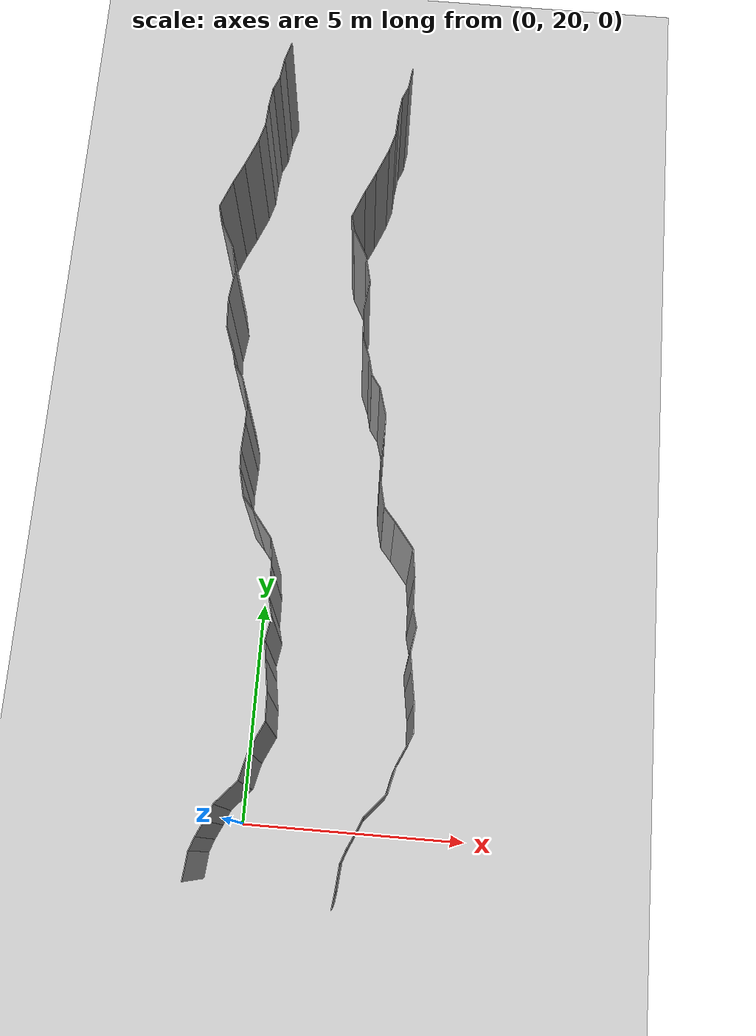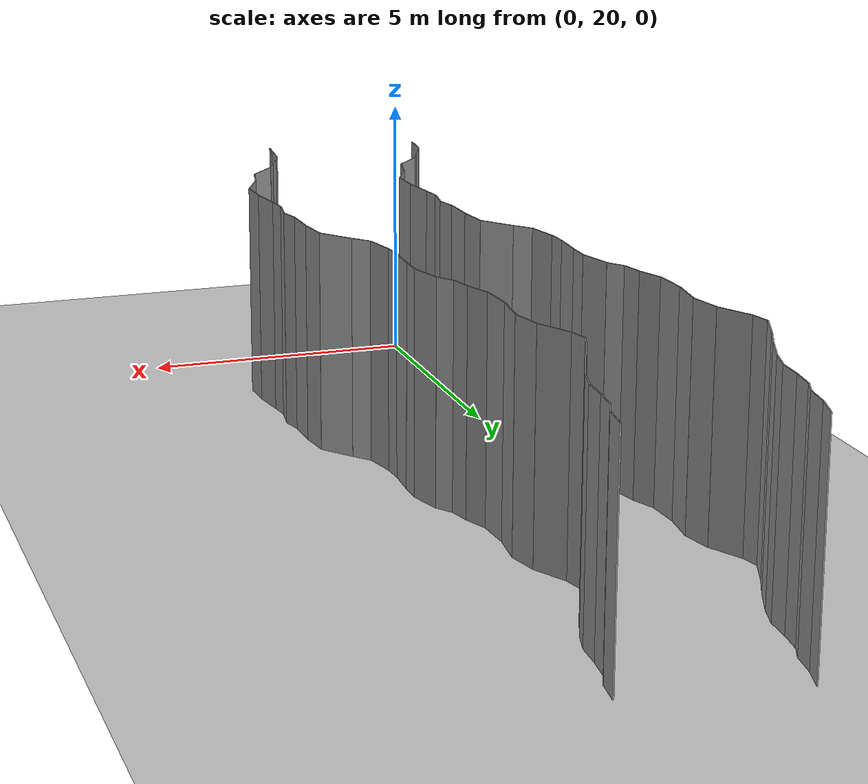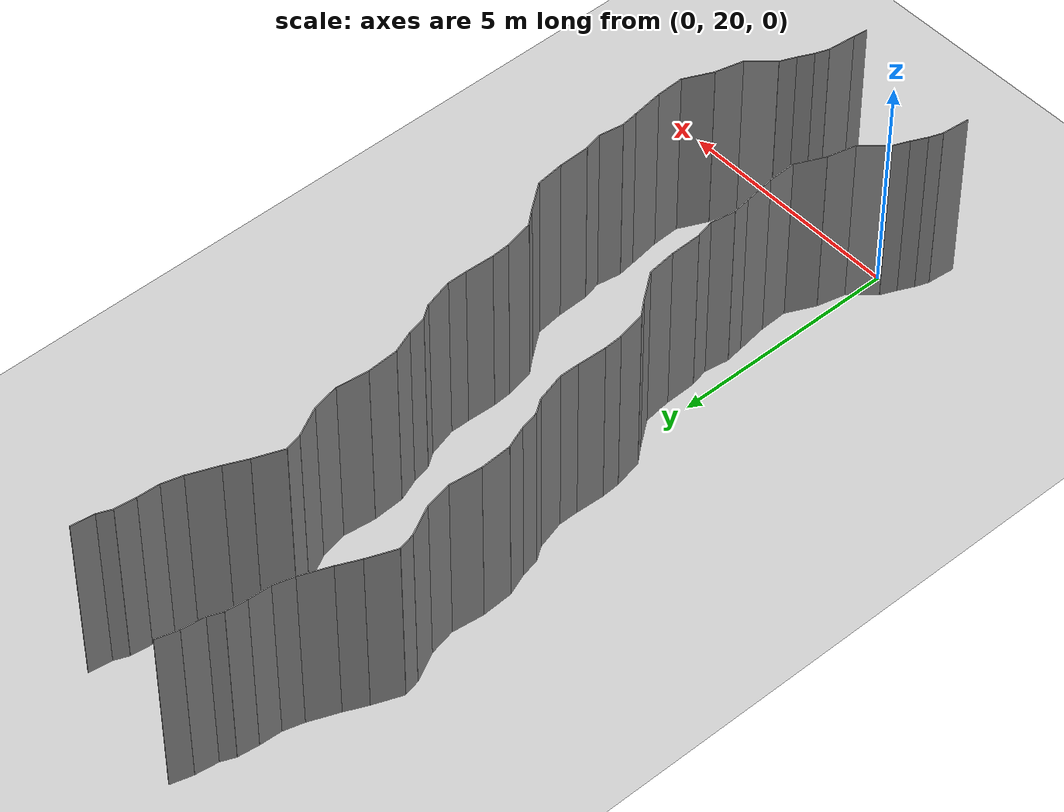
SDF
<sdf version="1.6">
 <world name="default">
  <model name="ground_plane">
   <static>1</static>
   <link name="link">
    <collision name="collision">
     <geometry><plane><normal>0 0 1</normal><size>200 200</size></plane></geometry>
     <surface><friction><ode><mu>100</mu><mu2>50</mu2></ode></friction></surface>
    </collision>
    <visual name="visual">
     <cast_shadows>0</cast_shadows>
     <geometry><plane><normal>0 0 1</normal><size>200 200</size></plane></geometry>
     <material>
      <script><uri>file://media/materials/scripts/gazebo.material</uri><name>Gazebo/Grey</name></script>
     </material>
    </visual>
   </link>
   <pose>0 100 0 0 -0 0</pose>
  </model>
  <model name="wall_73">
   <static>1</static>
   <pose>2.219020097511163 18.608365236209874 2 0 0 -0.12762203050015697</pose>
   <link name="link">
    <collision name="collision"><geometry><box><size>0.02 0.304195233267 4</size></box></geometry></collision>
    <visual name="visual">
     <material>
      <script><name>Gazebo/Grey</name><uri>file://media/materials/scripts/gazebo.material</uri></script>
     </material>
     <geometry><box><size>0.02 0.304195233267 4</size></box></geometry>
    </visual>
   </link>
  </model>
  <model name="wall_74">
   <static>1</static>
   <pose>-0.7339553938217581 19.053002999837826 2 0 0 -0.09389702541080118</pose>
   <link name="link">
    <collision name="collision"><geometry><box><size>0.02 0.590153885195 4</size></box></geometry></collision>
    <visual name="visual">
     <material>
      <script><name>Gazebo/Grey</name><uri>file://media/materials/scripts/gazebo.material</uri></script>
     </material>
     <geometry><box><size>0.02 0.590153885195 4</size></box></geometry>
    </visual>
   </link>
  </model>
  <model name="wall_75">
   <static>1</static>
   <pose>2.2660446061782418 19.053002999837826 2 0 0 -0.09389702541080118</pose>
   <link name="link">
    <collision name="collision"><geometry><box><size>0.02 0.590153885195 4</size></box></geometry></collision>
    <visual name="visual">
     <material>
      <script><name>Gazebo/Grey</name><uri>file://media/materials/scripts/gazebo.material</uri></script>
     </material>
     <geometry><box><size>0.02 0.590153885195 4</size></box></geometry>
    </visual>
   </link>
  </model>
  <model name="wall_76">
   <static>1</static>
   <pose>-0.6542394221214239 19.487677579665444 2 0 0 -0.3538663800210382</pose>
   <link name="link">
    <collision name="collision"><geometry><box><size>0.02 0.300408274332 4</size></box></geometry></collision>
    <visual name="visual">
     <material>
      <script><name>Gazebo/Grey</name><uri>file://media/materials/scripts/gazebo.material</uri></script>
     </material>
     <geometry><box><size>0.02 0.300408274332 4</size></box></geometry>
    </visual>
   </link>
  </model>
  <model name="wall_77">
   <static>1</static>
   <pose>2.345760577878576 19.487677579665444 2 0 0 -0.3538663800210382</pose>
   <link name="link">
    <collision name="collision"><geometry><box><size>0.02 0.300408274332 4</size></box></geometry></collision>
    <visual name="visual">
     <material>
      <script><name>Gazebo/Grey</name><uri>file://media/materials/scripts/gazebo.material</uri></script>
     </material>
     <geometry><box><size>0.02 0.300408274332 4</size></box></geometry>
    </visual>
   </link>
  </model>
  <model name="wall_78">
   <static>1</static>
   <pose>-0.5257628058018844 19.78918479655036 2 0 0 -0.44414493881926276</pose>
   <link name="link">
    <collision name="collision"><geometry><box><size>0.02 0.355733291643 4</size></box></geometry></collision>
    <visual name="visual">
     <material>
      <script><name>Gazebo/Grey</name><uri>file://media/materials/scripts/gazebo.material</uri></script>
     </material>
     <geometry><box><size>0.02 0.355733291643 4</size></box></geometry>
    </visual>
   </link>
  </model>
  <model name="wall_79">
   <static>1</static>
   <pose>2.474237194198116 19.78918479655036 2 0 0 -0.44414493881926276</pose>
   <link name="link">
    <collision name="collision"><geometry><box><size>0.02 0.355733291643 4</size></box></geometry></collision>
    <visual name="visual">
     <material>
      <script><name>Gazebo/Grey</name><uri>file://media/materials/scripts/gazebo.material</uri></script>
     </material>
     <geometry><box><size>0.02 0.355733291643 4</size></box></geometry>
    </visual>
   </link>
  </model>
  <model name="wall_80">
   <static>1</static>
   <pose>-0.37928064484786284 20.115130289323773 2 0 0 -0.400782385011734</pose>
   <link name="link">
    <collision name="collision"><geometry><box><size>0.02 0.359130423892 4</size></box></geometry></collision>
    <visual name="visual">
     <material>
      <script><name>Gazebo/Grey</name><uri>file://media/materials/scripts/gazebo.material</uri></script>
     </material>
     <geometry><box><size>0.02 0.359130423892 4</size></box></geometry>
    </visual>
   </link>
  </model>
  <model name="wall_81">
   <static>1</static>
   <pose>2.6207193551521373 20.115130289323773 2 0 0 -0.400782385011734</pose>
   <link name="link">
    <collision name="collision"><geometry><box><size>0.02 0.359130423892 4</size></box></geometry></collision>
    <visual name="visual">
     <material>
      <script><name>Gazebo/Grey</name><uri>file://media/materials/scripts/gazebo.material</uri></script>
     </material>
     <geometry><box><size>0.02 0.359130423892 4</size></box></geometry>
    </visual>
   </link>
  </model>
  <model name="wall_82">
   <static>1</static>
   <pose>-0.08817520466029033 20.526300657599137 2 0 0 -0.7323630163622958</pose>
   <link name="link">
    <collision name="collision"><geometry><box><size>0.02 0.661204337302 4</size></box></geometry></collision>
    <visual name="visual">
     <material>
      <script><name>Gazebo/Grey</name><uri>file://media/materials/scripts/gazebo.material</uri></script>
     </material>
     <geometry><box><size>0.02 0.661204337302 4</size></box></geometry>
    </visual>
   </link>
  </model>
  <model name="wall_83">
   <static>1</static>
   <pose>2.91182479533971 20.526300657599137 2 0 0 -0.7323630163622958</pose>
   <link name="link">
    <collision name="collision"><geometry><box><size>0.02 0.661204337302 4</size></box></geometry></collision>
    <visual name="visual">
     <material>
      <script><name>Gazebo/Grey</name><uri>file://media/materials/scripts/gazebo.material</uri></script>
     </material>
     <geometry><box><size>0.02 0.661204337302 4</size></box></geometry>
    </visual>
   </link>
  </model>
  <model name="wall_84">
   <static>1</static>
   <pose>0.2058278364939707 21.071242176593536 2 0 0 -0.23923179702753614</pose>
   <link name="link">
    <collision name="collision"><geometry><box><size>0.02 0.615750192971 4</size></box></geometry></collision>
    <visual name="visual">
     <material>
      <script><name>Gazebo/Grey</name><uri>file://media/materials/scripts/gazebo.material</uri></script>
     </material>
     <geometry><box><size>0.02 0.615750192971 4</size></box></geometry>
    </visual>
   </link>
  </model>
  <model name="wall_85">
   <static>1</static>
   <pose>3.2058278364939707 21.071242176593536 2 0 0 -0.23923179702753614</pose>
   <link name="link">
    <collision name="collision"><geometry><box><size>0.02 0.615750192971 4</size></box></geometry></collision>
    <visual name="visual">
     <material>
      <script><name>Gazebo/Grey</name><uri>file://media/materials/scripts/gazebo.material</uri></script>
     </material>
     <geometry><box><size>0.02 0.615750192971 4</size></box></geometry>
    </visual>
   </link>
  </model>
  <model name="wall_86">
   <static>1</static>
   <pose>0.4191884155627339 21.671542502938113 2 0 0 -0.43621998670861933</pose>
   <link name="link">
    <collision name="collision"><geometry><box><size>0.02 0.664625535877 4</size></box></geometry></collision>
    <visual name="visual">
     <material>
      <script><name>Gazebo/Grey</name><uri>file://media/materials/scripts/gazebo.material</uri></script>
     </material>
     <geometry><box><size>0.02 0.664625535877 4</size></box></geometry>
    </visual>
   </link>
  </model>
  <model name="wall_87">
   <static>1</static>
   <pose>3.4191884155627337 21.671542502938113 2 0 0 -0.43621998670861933</pose>
   <link name="link">
    <collision name="collision"><geometry><box><size>0.02 0.664625535877 4</size></box></geometry></collision>
    <visual name="visual">
     <material>
      <script><name>Gazebo/Grey</name><uri>file://media/materials/scripts/gazebo.material</uri></script>
     </material>
     <geometry><box><size>0.02 0.664625535877 4</size></box></geometry>
    </visual>
   </link>
  </model>
  <model name="wall_88">
   <static>1</static>
   <pose>0.5473518022686106 22.27189220624613 2 0 0 0.040906365883198195</pose>
   <link name="link">
    <collision name="collision"><geometry><box><size>0.02 0.598813497922 4</size></box></geometry></collision>
    <visual name="visual">
     <material>
      <script><name>Gazebo/Grey</name><uri>file://media/materials/scripts/gazebo.material</uri></script>
     </material>
     <geometry><box><size>0.02 0.598813497922 4</size></box></geometry>
    </visual>
   </link>
  </model>
  <model name="wall_89">
   <static>1</static>
   <pose>3.5473518022686106 22.27189220624613 2 0 0 0.040906365883198195</pose>
   <link name="link">
    <collision name="collision"><geometry><box><size>0.02 0.598813497922 4</size></box></geometry></collision>
    <visual name="visual">
     <material>
      <script><name>Gazebo/Grey</name><uri>file://media/materials/scripts/gazebo.material</uri></script>
     </material>
     <geometry><box><size>0.02 0.598813497922 4</size></box></geometry>
    </visual>
   </link>
  </model>
  <model name="wall_90">
   <static>1</static>
   <pose>0.48670586295287777 22.9039956453875 2 0 0 0.144362267005257</pose>
   <link name="link">
    <collision name="collision"><geometry><box><size>0.02 0.672893858371 4</size></box></geometry></collision>
    <visual name="visual">
     <material>
      <script><name>Gazebo/Grey</name><uri>file://media/materials/scripts/gazebo.material</uri></script>
     </material>
     <geometry><box><size>0.02 0.672893858371 4</size></box></geometry>
    </visual>
   </link>
  </model>
  <model name="wall_91">
   <static>1</static>
   <pose>3.4867058629528778 22.9039956453875 2 0 0 0.144362267005257</pose>
   <link name="link">
    <collision name="collision"><geometry><box><size>0.02 0.672893858371 4</size></box></geometry></collision>
    <visual name="visual">
     <material>
      <script><name>Gazebo/Grey</name><uri>file://media/materials/scripts/gazebo.material</uri></script>
     </material>
     <geometry><box><size>0.02 0.672893858371 4</size></box></geometry>
    </visual>
   </link>
  </model>
  <model name="wall_92">
   <static>1</static>
   <pose>0.41352244779082803 23.41855405179302 2 0 0 0.13561708210728887</pose>
   <link name="link">
    <collision name="collision"><geometry><box><size>0.02 0.366588478465 4</size></box></geometry></collision>
    <visual name="visual">
     <material>
      <script><name>Gazebo/Grey</name><uri>file://media/materials/scripts/gazebo.material</uri></script>
     </material>
     <geometry><box><size>0.02 0.366588478465 4</size></box></geometry>
    </visual>
   </link>
  </model>
  <model name="wall_93">
   <static>1</static>
   <pose>3.413522447790828 23.41855405179302 2 0 0 0.13561708210728887</pose>
   <link name="link">
    <collision name="collision"><geometry><box><size>0.02 0.366588478465 4</size></box></geometry></collision>
    <visual name="visual">
     <material>
      <script><name>Gazebo/Grey</name><uri>file://media/materials/scripts/gazebo.material</uri></script>
     </material>
     <geometry><box><size>0.02 0.366588478465 4</size></box></geometry>
    </visual>
   </link>
  </model>
  <model name="wall_94">
   <static>1</static>
   <pose>0.4307897962655922 23.860100413446663 2 0 0 -0.1603781570417159</pose>
   <link name="link">
    <collision name="collision"><geometry><box><size>0.02 0.52662846884 4</size></box></geometry></collision>
    <visual name="visual">
     <material>
      <script><name>Gazebo/Grey</name><uri>file://media/materials/scripts/gazebo.material</uri></script>
     </material>
     <geometry><box><size>0.02 0.52662846884 4</size></box></geometry>
    </visual>
   </link>
  </model>
  <model name="wall_95">
   <static>1</static>
   <pose>3.430789796265592 23.860100413446663 2 0 0 -0.1603781570417159</pose>
   <link name="link">
    <collision name="collision"><geometry><box><size>0.02 0.52662846884 4</size></box></geometry></collision>
    <visual name="visual">
     <material>
      <script><name>Gazebo/Grey</name><uri>file://media/materials/scripts/gazebo.material</uri></script>
     </material>
     <geometry><box><size>0.02 0.52662846884 4</size></box></geometry>
    </visual>
   </link>
  </model>
  <model name="wall_96">
   <static>1</static>
   <pose>0.4265885104292357 24.314183559669832 2 0 0 0.2338631590387517</pose>
   <link name="link">
    <collision name="collision"><geometry><box><size>0.02 0.399161882734 4</size></box></geometry></collision>
    <visual name="visual">
     <material>
      <script><name>Gazebo/Grey</name><uri>file://media/materials/scripts/gazebo.material</uri></script>
     </material>
     <geometry><box><size>0.02 0.399161882734 4</size></box></geometry>
    </visual>
   </link>
  </model>
  <model name="wall_97">
   <static>1</static>
   <pose>3.4265885104292355 24.314183559669832 2 0 0 0.2338631590387517</pose>
   <link name="link">
    <collision name="collision"><geometry><box><size>0.02 0.399161882734 4</size></box></geometry></collision>
    <visual name="visual">
     <material>
      <script><name>Gazebo/Grey</name><uri>file://media/materials/scripts/gazebo.material</uri></script>
     </material>
     <geometry><box><size>0.02 0.399161882734 4</size></box></geometry>
    </visual>
   </link>
  </model>
  <model name="wall_98">
   <static>1</static>
   <pose>0.37208450304329926 24.84162740775595 2 0 0 0.024758738950173824</pose>
   <link name="link">
    <collision name="collision"><geometry><box><size>0.02 0.666795992167 4</size></box></geometry></collision>
    <visual name="visual">
     <material>
      <script><name>Gazebo/Grey</name><uri>file://media/materials/scripts/gazebo.material</uri></script>
     </material>
     <geometry><box><size>0.02 0.666795992167 4</size></box></geometry>
    </visual>
   </link>
  </model>
  <model name="wall_99">
   <static>1</static>
   <pose>3.372084503043299 24.84162740775595 2 0 0 0.024758738950173824</pose>
   <link name="link">
    <collision name="collision"><geometry><box><size>0.02 0.666795992167 4</size></box></geometry></collision>
    <visual name="visual">
     <material>
      <script><name>Gazebo/Grey</name><uri>file://media/materials/scripts/gazebo.material</uri></script>
     </material>
     <geometry><box><size>0.02 0.666795992167 4</size></box></geometry>
    </visual>
   </link>
  </model>
  <model name="wall_100">
   <static>1</static>
   <pose>0.32668797906791375 25.4742277673065 2 0 0 0.12346597693562823</pose>
   <link name="link">
    <collision name="collision"><geometry><box><size>0.02 0.603200800953 4</size></box></geometry></collision>
    <visual name="visual">
     <material>
      <script><name>Gazebo/Grey</name><uri>file://media/materials/scripts/gazebo.material</uri></script>
     </material>
     <geometry><box><size>0.02 0.603200800953 4</size></box></geometry>
    </visual>
   </link>
  </model>
  <model name="wall_101">
   <static>1</static>
   <pose>3.3266879790679136 25.4742277673065 2 0 0 0.12346597693562823</pose>
   <link name="link">
    <collision name="collision"><geometry><box><size>0.02 0.603200800953 4</size></box></geometry></collision>
    <visual name="visual">
     <material>
      <script><name>Gazebo/Grey</name><uri>file://media/materials/scripts/gazebo.material</uri></script>
     </material>
     <geometry><box><size>0.02 0.603200800953 4</size></box></geometry>
    </visual>
   </link>
  </model>
  <model name="wall_102">
   <static>1</static>
   <pose>0.07929529165458027 26.04839696648243 2 0 0 0.6529825571611448</pose>
   <link name="link">
    <collision name="collision"><geometry><box><size>0.02 0.692114358872 4</size></box></geometry></collision>
    <visual name="visual">
     <material>
      <script><name>Gazebo/Grey</name><uri>file://media/materials/scripts/gazebo.material</uri></script>
     </material>
     <geometry><box><size>0.02 0.692114358872 4</size></box></geometry>
    </visual>
   </link>
  </model>
  <model name="wall_103">
   <static>1</static>
   <pose>3.07929529165458 26.04839696648243 2 0 0 0.6529825571611448</pose>
   <link name="link">
    <collision name="collision"><geometry><box><size>0.02 0.692114358872 4</size></box></geometry></collision>
    <visual name="visual">
     <material>
      <script><name>Gazebo/Grey</name><uri>file://media/materials/scripts/gazebo.material</uri></script>
     </material>
     <geometry><box><size>0.02 0.692114358872 4</size></box></geometry>
    </visual>
   </link>
  </model>
  <model name="wall_104">
   <static>1</static>
   <pose>-0.25588651996772654 26.4709274393617 2 0 0 0.7021936978117561</pose>
   <link name="link">
    <collision name="collision"><geometry><box><size>0.02 0.386849803966 4</size></box></geometry></collision>
    <visual name="visual">
     <material>
      <script><name>Gazebo/Grey</name><uri>file://media/materials/scripts/gazebo.material</uri></script>
     </material>
     <geometry><box><size>0.02 0.386849803966 4</size></box></geometry>
    </visual>
   </link>
  </model>
  <model name="wall_105">
   <static>1</static>
   <pose>2.7441134800322735 26.4709274393617 2 0 0 0.7021936978117561</pose>
   <link name="link">
    <collision name="collision"><geometry><box><size>0.02 0.386849803966 4</size></box></geometry></collision>
    <visual name="visual">
     <material>
      <script><name>Gazebo/Grey</name><uri>file://media/materials/scripts/gazebo.material</uri></script>
     </material>
     <geometry><box><size>0.02 0.386849803966 4</size></box></geometry>
    </visual>
   </link>
  </model>
  <model name="wall_106">
   <static>1</static>
   <pose>-0.4460654364318296 26.92396046149528 2 0 0 0.210501846261413</pose>
   <link name="link">
    <collision name="collision"><geometry><box><size>0.02 0.624519952048 4</size></box></geometry></collision>
    <visual name="visual">
     <material>
      <script><name>Gazebo/Grey</name><uri>file://media/materials/scripts/gazebo.material</uri></script>
     </material>
     <geometry><box><size>0.02 0.624519952048 4</size></box></geometry>
    </visual>
   </link>
  </model>
  <model name="wall_107">
   <static>1</static>
   <pose>2.5539345635681703 26.92396046149528 2 0 0 0.210501846261413</pose>
   <link name="link">
    <collision name="collision"><geometry><box><size>0.02 0.624519952048 4</size></box></geometry></collision>
    <visual name="visual">
     <material>
      <script><name>Gazebo/Grey</name><uri>file://media/materials/scripts/gazebo.material</uri></script>
     </material>
     <geometry><box><size>0.02 0.624519952048 4</size></box></geometry>
    </visual>
   </link>
  </model>
  <model name="wall_108">
   <static>1</static>
   <pose>-0.5224797045812923 27.425718697092357 2 0 0 0.05680155769961477</pose>
   <link name="link">
    <collision name="collision"><geometry><box><size>0.02 0.393416554484 4</size></box></geometry></collision>
    <visual name="visual">
     <material>
      <script><name>Gazebo/Grey</name><uri>file://media/materials/scripts/gazebo.material</uri></script>
     </material>
     <geometry><box><size>0.02 0.393416554484 4</size></box></geometry>
    </visual>
   </link>
  </model>
  <model name="wall_109">
   <static>1</static>
   <pose>2.4775202954187074 27.425718697092357 2 0 0 0.05680155769961477</pose>
   <link name="link">
    <collision name="collision"><geometry><box><size>0.02 0.393416554484 4</size></box></geometry></collision>
    <visual name="visual">
     <material>
      <script><name>Gazebo/Grey</name><uri>file://media/materials/scripts/gazebo.material</uri></script>
     </material>
     <geometry><box><size>0.02 0.393416554484 4</size></box></geometry>
    </visual>
   </link>
  </model>
  <model name="wall_110">
   <static>1</static>
   <pose>-0.5189134596830208 27.930627348253 2 0 0 -0.0477197664464321</pose>
   <link name="link">
    <collision name="collision"><geometry><box><size>0.02 0.617738456303 4</size></box></geometry></collision>
    <visual name="visual">
     <material>
      <script><name>Gazebo/Grey</name><uri>file://media/materials/scripts/gazebo.material</uri></script>
     </material>
     <geometry><box><size>0.02 0.617738456303 4</size></box></geometry>
    </visual>
   </link>
  </model>
  <model name="wall_111">
   <static>1</static>
   <pose>2.481086540316979 27.930627348253 2 0 0 -0.0477197664464321</pose>
   <link name="link">
    <collision name="collision"><geometry><box><size>0.02 0.617738456303 4</size></box></geometry></collision>
    <visual name="visual">
     <material>
      <script><name>Gazebo/Grey</name><uri>file://media/materials/scripts/gazebo.material</uri></script>
     </material>
     <geometry><box><size>0.02 0.617738456303 4</size></box></geometry>
    </visual>
   </link>
  </model>
  <model name="wall_112">
   <static>1</static>
   <pose>-0.5039320361799999 28.446637552562393 2 0 0 -0.0011944969789376037</pose>
   <link name="link">
    <collision name="collision"><geometry><box><size>0.02 0.414985464537 4</size></box></geometry></collision>
    <visual name="visual">
     <material>
      <script><name>Gazebo/Grey</name><uri>file://media/materials/scripts/gazebo.material</uri></script>
     </material>
     <geometry><box><size>0.02 0.414985464537 4</size></box></geometry>
    </visual>
   </link>
  </model>
  <model name="wall_113">
   <static>1</static>
   <pose>2.49606796382 28.446637552562393 2 0 0 -0.0011944969789376037</pose>
   <link name="link">
    <collision name="collision"><geometry><box><size>0.02 0.414985464537 4</size></box></geometry></collision>
    <visual name="visual">
     <material>
      <script><name>Gazebo/Grey</name><uri>file://media/materials/scripts/gazebo.material</uri></script>
     </material>
     <geometry><box><size>0.02 0.414985464537 4</size></box></geometry>
    </visual>
   </link>
  </model>
  <model name="wall_114">
   <static>1</static>
   <pose>-0.5889494531203123 28.96176236180357 2 0 0 0.27037902714222223</pose>
   <link name="link">
    <collision name="collision"><geometry><box><size>0.02 0.638459870312 4</size></box></geometry></collision>
    <visual name="visual">
     <material>
      <script><name>Gazebo/Grey</name><uri>file://media/materials/scripts/gazebo.material</uri></script>
     </material>
     <geometry><box><size>0.02 0.638459870312 4</size></box></geometry>
    </visual>
   </link>
  </model>
  <model name="wall_115">
   <static>1</static>
   <pose>2.4110505468796877 28.96176236180357 2 0 0 0.27037902714222223</pose>
   <link name="link">
    <collision name="collision"><geometry><box><size>0.02 0.638459870312 4</size></box></geometry></collision>
    <visual name="visual">
     <material>
      <script><name>Gazebo/Grey</name><uri>file://media/materials/scripts/gazebo.material</uri></script>
     </material>
     <geometry><box><size>0.02 0.638459870312 4</size></box></geometry>
    </visual>
   </link>
  </model>
  <model name="wall_116">
   <static>1</static>
   <pose>-0.7730576587683056 29.41057351095191 2 0 0 0.6108100662413356</pose>
   <link name="link">
    <collision name="collision"><geometry><box><size>0.02 0.34468197097 4</size></box></geometry></collision>
    <visual name="visual">
     <material>
      <script><name>Gazebo/Grey</name><uri>file://media/materials/scripts/gazebo.material</uri></script>
     </material>
     <geometry><box><size>0.02 0.34468197097 4</size></box></geometry>
    </visual>
   </link>
  </model>
  <model name="wall_117">
   <static>1</static>
   <pose>2.2269423412316947 29.41057351095191 2 0 0 0.6108100662413356</pose>
   <link name="link">
    <collision name="collision"><geometry><box><size>0.02 0.34468197097 4</size></box></geometry></collision>
    <visual name="visual">
     <material>
      <script><name>Gazebo/Grey</name><uri>file://media/materials/scripts/gazebo.material</uri></script>
     </material>
     <geometry><box><size>0.02 0.34468197097 4</size></box></geometry>
    </visual>
   </link>
  </model>
  <model name="wall_118">
   <static>1</static>
   <pose>-0.9188902261819535 29.753456086510088 2 0 0 0.22888135268735957</pose>
   <link name="link">
    <collision name="collision"><geometry><box><size>0.02 0.414209551508 4</size></box></geometry></collision>
    <visual name="visual">
     <material>
      <script><name>Gazebo/Grey</name><uri>file://media/materials/scripts/gazebo.material</uri></script>
     </material>
     <geometry><box><size>0.02 0.414209551508 4</size></box></geometry>
    </visual>
   </link>
  </model>
  <model name="wall_119">
   <static>1</static>
   <pose>2.0811097738180466 29.753456086510088 2 0 0 0.22888135268735957</pose>
   <link name="link">
    <collision name="collision"><geometry><box><size>0.02 0.414209551508 4</size></box></geometry></collision>
    <visual name="visual">
     <material>
      <script><name>Gazebo/Grey</name><uri>file://media/materials/scripts/gazebo.material</uri></script>
     </material>
     <geometry><box><size>0.02 0.414209551508 4</size></box></geometry>
    </visual>
   </link>
  </model>
  <model name="wall_120">
   <static>1</static>
   <pose>-1.0534375109133371 30.183324350581337 2 0 0 0.3664177877807995</pose>
   <link name="link">
    <collision name="collision"><geometry><box><size>0.02 0.488775751066 4</size></box></geometry></collision>
    <visual name="visual">
     <material>
      <script><name>Gazebo/Grey</name><uri>file://media/materials/scripts/gazebo.material</uri></script>
     </material>
     <geometry><box><size>0.02 0.488775751066 4</size></box></geometry>
    </visual>
   </link>
  </model>
  <model name="wall_121">
   <static>1</static>
   <pose>1.9465624890866629 30.183324350581337 2 0 0 0.3664177877807995</pose>
   <link name="link">
    <collision name="collision"><geometry><box><size>0.02 0.488775751066 4</size></box></geometry></collision>
    <visual name="visual">
     <material>
      <script><name>Gazebo/Grey</name><uri>file://media/materials/scripts/gazebo.material</uri></script>
     </material>
     <geometry><box><size>0.02 0.488775751066 4</size></box></geometry>
    </visual>
   </link>
  </model>
  <model name="wall_122">
   <static>1</static>
   <pose>-1.1587300609059408 30.7444167219524 2 0 0 0.053219193397404094</pose>
   <link name="link">
    <collision name="collision"><geometry><box><size>0.02 0.666799576969 4</size></box></geometry></collision>
    <visual name="visual">
     <material>
      <script><name>Gazebo/Grey</name><uri>file://media/materials/scripts/gazebo.material</uri></script>
     </material>
     <geometry><box><size>0.02 0.666799576969 4</size></box></geometry>
    </visual>
   </link>
  </model>
  <model name="wall_123">
   <static>1</static>
   <pose>1.8412699390940592 30.7444167219524 2 0 0 0.053219193397404094</pose>
   <link name="link">
    <collision name="collision"><geometry><box><size>0.02 0.666799576969 4</size></box></geometry></collision>
    <visual name="visual">
     <material>
      <script><name>Gazebo/Grey</name><uri>file://media/materials/scripts/gazebo.material</uri></script>
     </material>
     <geometry><box><size>0.02 0.666799576969 4</size></box></geometry>
    </visual>
   </link>
  </model>
  <model name="wall_124">
   <static>1</static>
   <pose>-1.1359882292782524 31.41891448253293 2 0 0 -0.11795192057094024</pose>
   <link name="link">
    <collision name="collision"><geometry><box><size>0.02 0.687919854178 4</size></box></geometry></collision>
    <visual name="visual">
     <material>
      <script><name>Gazebo/Grey</name><uri>file://media/materials/scripts/gazebo.material</uri></script>
     </material>
     <geometry><box><size>0.02 0.687919854178 4</size></box></geometry>
    </visual>
   </link>
  </model>
  <model name="wall_125">
   <static>1</static>
   <pose>1.8640117707217476 31.41891448253293 2 0 0 -0.11795192057094024</pose>
   <link name="link">
    <collision name="collision"><geometry><box><size>0.02 0.687919854178 4</size></box></geometry></collision>
    <visual name="visual">
     <material>
      <script><name>Gazebo/Grey</name><uri>file://media/materials/scripts/gazebo.material</uri></script>
     </material>
     <geometry><box><size>0.02 0.687919854178 4</size></box></geometry>
    </visual>
   </link>
  </model>
  <model name="wall_126">
   <static>1</static>
   <pose>-1.1588776058596024 32.05076249469004 2 0 0 0.2149229871725235</pose>
   <link name="link">
    <collision name="collision"><geometry><box><size>0.02 0.594227518995 4</size></box></geometry></collision>
    <visual name="visual">
     <material>
      <script><name>Gazebo/Grey</name><uri>file://media/materials/scripts/gazebo.material</uri></script>
     </material>
     <geometry><box><size>0.02 0.594227518995 4</size></box></geometry>
    </visual>
   </link>
  </model>
  <model name="wall_127">
   <static>1</static>
   <pose>1.8411223941403976 32.05076249469004 2 0 0 0.2149229871725235</pose>
   <link name="link">
    <collision name="collision"><geometry><box><size>0.02 0.594227518995 4</size></box></geometry></collision>
    <visual name="visual">
     <material>
      <script><name>Gazebo/Grey</name><uri>file://media/materials/scripts/gazebo.material</uri></script>
     </material>
     <geometry><box><size>0.02 0.594227518995 4</size></box></geometry>
    </visual>
   </link>
  </model>
  <model name="wall_128">
   <static>1</static>
   <pose>-1.3818169671725866 32.64677420451539 2 0 0 0.48104159089037657</pose>
   <link name="link">
    <collision name="collision"><geometry><box><size>0.02 0.689744069238 4</size></box></geometry></collision>
    <visual name="visual">
     <material>
      <script><name>Gazebo/Grey</name><uri>file://media/materials/scripts/gazebo.material</uri></script>
     </material>
     <geometry><box><size>0.02 0.689744069238 4</size></box></geometry>
    </visual>
   </link>
  </model>
  <model name="wall_129">
   <static>1</static>
   <pose>1.6181830328274134 32.64677420451539 2 0 0 0.48104159089037657</pose>
   <link name="link">
    <collision name="collision"><geometry><box><size>0.02 0.689744069238 4</size></box></geometry></collision>
    <visual name="visual">
     <material>
      <script><name>Gazebo/Grey</name><uri>file://media/materials/scripts/gazebo.material</uri></script>
     </material>
     <geometry><box><size>0.02 0.689744069238 4</size></box></geometry>
    </visual>
   </link>
  </model>
  <model name="wall_130">
   <static>1</static>
   <pose>-1.5802711404625343 33.123937550608495 2 0 0 0.22303076182967768</pose>
   <link name="link">
    <collision name="collision"><geometry><box><size>0.02 0.351567058497 4</size></box></geometry></collision>
    <visual name="visual">
     <material>
      <script><name>Gazebo/Grey</name><uri>file://media/materials/scripts/gazebo.material</uri></script>
     </material>
     <geometry><box><size>0.02 0.351567058497 4</size></box></geometry>
    </visual>
   </link>
  </model>
  <model name="wall_131">
   <static>1</static>
   <pose>1.4197288595374657 33.123937550608495 2 0 0 0.22303076182967768</pose>
   <link name="link">
    <collision name="collision"><geometry><box><size>0.02 0.351567058497 4</size></box></geometry></collision>
    <visual name="visual">
     <material>
      <script><name>Gazebo/Grey</name><uri>file://media/materials/scripts/gazebo.material</uri></script>
     </material>
     <geometry><box><size>0.02 0.351567058497 4</size></box></geometry>
    </visual>
   </link>
  </model>
  <model name="wall_132">
   <static>1</static>
   <pose>-1.499520254900907 33.60131876678776 2 0 0 -0.3727371851360019</pose>
   <link name="link">
    <collision name="collision"><geometry><box><size>0.02 0.657017900248 4</size></box></geometry></collision>
    <visual name="visual">
     <material>
      <script><name>Gazebo/Grey</name><uri>file://media/materials/scripts/gazebo.material</uri></script>
     </material>
     <geometry><box><size>0.02 0.657017900248 4</size></box></geometry>
    </visual>
   </link>
  </model>
  <model name="wall_133">
   <static>1</static>
   <pose>1.500479745099093 33.60131876678776 2 0 0 -0.3727371851360019</pose>
   <link name="link">
    <collision name="collision"><geometry><box><size>0.02 0.657017900248 4</size></box></geometry></collision>
    <visual name="visual">
     <material>
      <script><name>Gazebo/Grey</name><uri>file://media/materials/scripts/gazebo.material</uri></script>
     </material>
     <geometry><box><size>0.02 0.657017900248 4</size></box></geometry>
    </visual>
   </link>
  </model>
  <model name="wall_134">
   <static>1</static>
   <pose>-1.2730839299960905 34.140052087504365 2 0 0 -0.4301629760451488</pose>
   <link name="link">
    <collision name="collision"><geometry><box><size>0.02 0.512228661338 4</size></box></geometry></collision>
    <visual name="visual">
     <material>
      <script><name>Gazebo/Grey</name><uri>file://media/materials/scripts/gazebo.material</uri></script>
     </material>
     <geometry><box><size>0.02 0.512228661338 4</size></box></geometry>
    </visual>
   </link>
  </model>
  <model name="wall_135">
   <static>1</static>
   <pose>1.7269160700039095 34.140052087504365 2 0 0 -0.4301629760451488</pose>
   <link name="link">
    <collision name="collision"><geometry><box><size>0.02 0.512228661338 4</size></box></geometry></collision>
    <visual name="visual">
     <material>
      <script><name>Gazebo/Grey</name><uri>file://media/materials/scripts/gazebo.material</uri></script>
     </material>
     <geometry><box><size>0.02 0.512228661338 4</size></box></geometry>
    </visual>
   </link>
  </model>
  <model name="wall_136">
   <static>1</static>
   <pose>-1.0395317026990534 34.68532358208994 2 0 0 -0.3853297372792065</pose>
   <link name="link">
    <collision name="collision"><geometry><box><size>0.02 0.674432560371 4</size></box></geometry></collision>
    <visual name="visual">
     <material>
      <script><name>Gazebo/Grey</name><uri>file://media/materials/scripts/gazebo.material</uri></script>
     </material>
     <geometry><box><size>0.02 0.674432560371 4</size></box></geometry>
    </visual>
   </link>
  </model>
  <model name="wall_137">
   <static>1</static>
   <pose>1.9604682973009466 34.68532358208994 2 0 0 -0.3853297372792065</pose>
   <link name="link">
    <collision name="collision"><geometry><box><size>0.02 0.674432560371 4</size></box></geometry></collision>
    <visual name="visual">
     <material>
      <script><name>Gazebo/Grey</name><uri>file://media/materials/scripts/gazebo.material</uri></script>
     </material>
     <geometry><box><size>0.02 0.674432560371 4</size></box></geometry>
    </visual>
   </link>
  </model>
  <model name="wall_138">
   <static>1</static>
   <pose>-0.8523999844546201 35.21338947489604 2 0 0 -0.27310632261700957</pose>
   <link name="link">
    <collision name="collision"><geometry><box><size>0.02 0.447746828606 4</size></box></geometry></collision>
    <visual name="visual">
     <material>
      <script><name>Gazebo/Grey</name><uri>file://media/materials/scripts/gazebo.material</uri></script>
     </material>
     <geometry><box><size>0.02 0.447746828606 4</size></box></geometry>
    </visual>
   </link>
  </model>
  <model name="wall_139">
   <static>1</static>
   <pose>2.14760001554538 35.21338947489604 2 0 0 -0.27310632261700957</pose>
   <link name="link">
    <collision name="collision"><geometry><box><size>0.02 0.447746828606 4</size></box></geometry></collision>
    <visual name="visual">
     <material>
      <script><name>Gazebo/Grey</name><uri>file://media/materials/scripts/gazebo.material</uri></script>
     </material>
     <geometry><box><size>0.02 0.447746828606 4</size></box></geometry>
    </visual>
   </link>
  </model>
  <model name="wall_140">
   <static>1</static>
   <pose>-0.7791234577698612 35.6707736064403 2 0 0 -0.05326670368293621</pose>
   <link name="link">
    <collision name="collision"><geometry><box><size>0.02 0.484302868393 4</size></box></geometry></collision>
    <visual name="visual">
     <material>
      <script><name>Gazebo/Grey</name><uri>file://media/materials/scripts/gazebo.material</uri></script>
     </material>
     <geometry><box><size>0.02 0.484302868393 4</size></box></geometry>
    </visual>
   </link>
  </model>
  <model name="wall_141">
   <static>1</static>
   <pose>2.2208765422301386 35.6707736064403 2 0 0 -0.05326670368293621</pose>
   <link name="link">
    <collision name="collision"><geometry><box><size>0.02 0.484302868393 4</size></box></geometry></collision>
    <visual name="visual">
     <material>
      <script><name>Gazebo/Grey</name><uri>file://media/materials/scripts/gazebo.material</uri></script>
     </material>
     <geometry><box><size>0.02 0.484302868393 4</size></box></geometry>
    </visual>
   </link>
  </model>
  <model name="wall_142">
   <static>1</static>
   <pose>-0.7376591333434532 36.13926312182031 2 0 0 -0.12538265872110765</pose>
   <link name="link">
    <collision name="collision"><geometry><box><size>0.02 0.456950176951 4</size></box></geometry></collision>
    <visual name="visual">
     <material>
      <script><name>Gazebo/Grey</name><uri>file://media/materials/scripts/gazebo.material</uri></script>
     </material>
     <geometry><box><size>0.02 0.456950176951 4</size></box></geometry>
    </visual>
   </link>
  </model>
  <model name="wall_143">
   <static>1</static>
   <pose>2.2623408666565465 36.13926312182031 2 0 0 -0.12538265872110765</pose>
   <link name="link">
    <collision name="collision"><geometry><box><size>0.02 0.456950176951 4</size></box></geometry></collision>
    <visual name="visual">
     <material>
      <script><name>Gazebo/Grey</name><uri>file://media/materials/scripts/gazebo.material</uri></script>
     </material>
     <geometry><box><size>0.02 0.456950176951 4</size></box></geometry>
    </visual>
   </link>
  </model>
  <model name="wall_144">
   <static>1</static>
   <pose>-0.6469594751316083 36.51478994688103 2 0 0 -0.3954147727090396</pose>
   <link name="link">
    <collision name="collision"><geometry><box><size>0.02 0.322582019892 4</size></box></geometry></collision>
    <visual name="visual">
     <material>
      <script><name>Gazebo/Grey</name><uri>file://media/materials/scripts/gazebo.material</uri></script>
     </material>
     <geometry><box><size>0.02 0.322582019892 4</size></box></geometry>
    </visual>
   </link>
  </model>
  <model name="wall_145">
   <static>1</static>
   <pose>2.3530405248683914 36.51478994688103 2 0 0 -0.3954147727090396</pose>
   <link name="link">
    <collision name="collision"><geometry><box><size>0.02 0.322582019892 4</size></box></geometry></collision>
    <visual name="visual">
     <material>
      <script><name>Gazebo/Grey</name><uri>file://media/materials/scripts/gazebo.material</uri></script>
     </material>
     <geometry><box><size>0.02 0.322582019892 4</size></box></geometry>
    </visual>
   </link>
  </model>
  <model name="wall_146">
   <static>1</static>
   <pose>-0.5512698420536799 36.91038996484438 2 0 0 -0.1351832190623133</pose>
   <link name="link">
    <collision name="collision"><geometry><box><size>0.02 0.498053364745 4</size></box></geometry></collision>
    <visual name="visual">
     <material>
      <script><name>Gazebo/Grey</name><uri>file://media/materials/scripts/gazebo.material</uri></script>
     </material>
     <geometry><box><size>0.02 0.498053364745 4</size></box></geometry>
    </visual>
   </link>
  </model>
  <model name="wall_147">
   <static>1</static>
   <pose>2.4487301579463203 36.91038996484438 2 0 0 -0.1351832190623133</pose>
   <link name="link">
    <collision name="collision"><geometry><box><size>0.02 0.498053364745 4</size></box></geometry></collision>
    <visual name="visual">
     <material>
      <script><name>Gazebo/Grey</name><uri>file://media/materials/scripts/gazebo.material</uri></script>
     </material>
     <geometry><box><size>0.02 0.498053364745 4</size></box></geometry>
    </visual>
   </link>
  </model>
  <model name="wall_148">
   <static>1</static>
   <pose>-0.45256709481037316 37.388819920014434 2 0 0 -0.2740966487866089</pose>
   <link name="link">
    <collision name="collision"><geometry><box><size>0.02 0.481318007896 4</size></box></geometry></collision>
    <visual name="visual">
     <material>
      <script><name>Gazebo/Grey</name><uri>file://media/materials/scripts/gazebo.material</uri></script>
     </material>
     <geometry><box><size>0.02 0.481318007896 4</size></box></geometry>
    </visual>
   </link>
  </model>
 </world>
</sdf>
